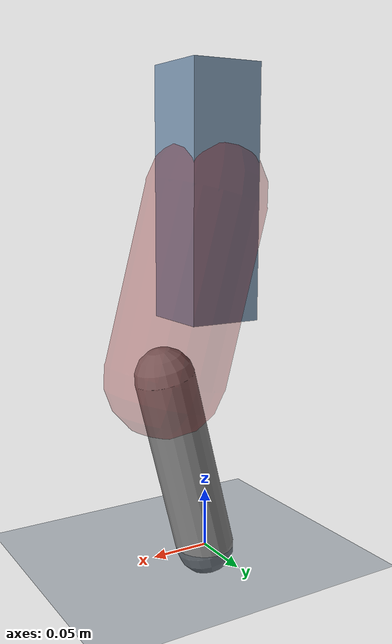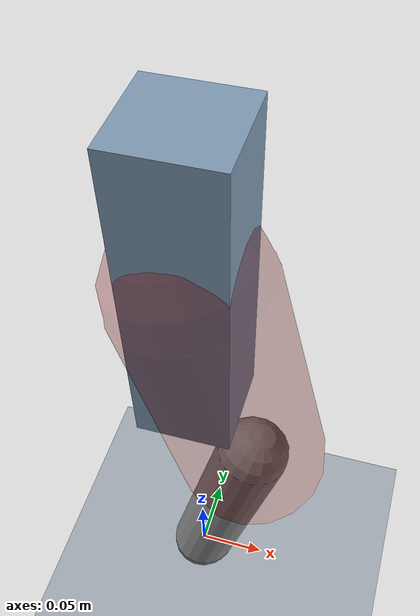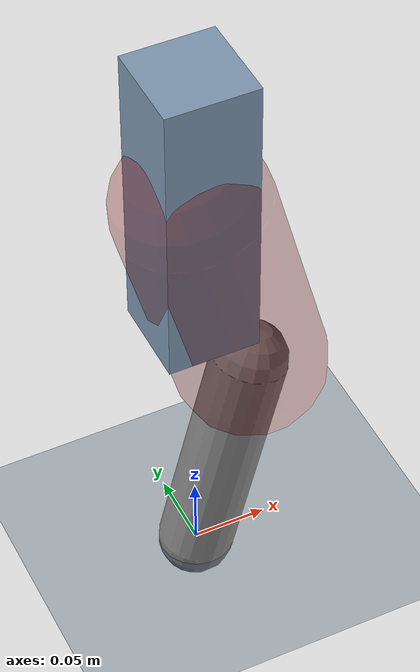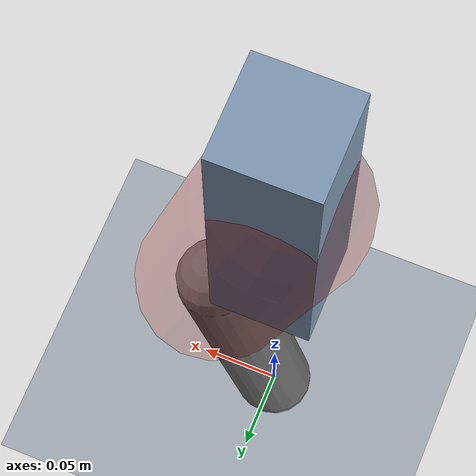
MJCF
<mujoco model="Hopper2D">
	<compiler inertiafromgeom="true" angle="radian" />
	<option timestep="0.001" integrator="implicit" cone="elliptic" solver="Newton" tolerance="1e-10" />

	<default>
		<geom contype="1" conaffinity="1" condim="3" friction="2 0.005 0.0001" solref="0.005 1" />
		<joint limited="true" damping="0.1" />
	</default>

	<asset>
		<texture name="skybox" type="skybox" builtin="gradient" rgb1=".4 .6 .8" rgb2="0 0 0" width="800" height="800" />
		<texture name="grid" type="2d" builtin="checker" rgb1=".1 .2 .3" rgb2=".2 .3 .4" width="300" height="300" mark="edge" markrgb=".2 .3 .4" />
		<material name="ground" texture="grid" texrepeat="1 1" texuniform="true" reflectance="0.1" />
		<material name="leg" rgba="0.5 0.6 0.7 1" />
	</asset>

	<worldbody>

		<geom name="floor" type="plane" size="5 5 0.25" material="ground" />

		<light directional="false" diffuse="0.8 0.8 0.8" specular="0.3 0.3 0.3" pos="0 0 2" dir="0 0 -1" />
		<light mode="targetbodycom" target="base" directional="false" diffuse="0.8 0.8 0.8" specular="0.3 0.3 0.3" pos="0 0 2" dir="0 0 -1" />

		<camera name="fixed" pos="0 -2 1" xyaxes="1 0 0 0 0 1" />
		<camera name="tracking" mode="trackcom" pos="0 -3 1" />

		<body name="root" pos="0 0 0.29917703449717936">
			<joint name="slide_x" type="slide" axis="1 0 0" range="-100 100" />
			<joint name="slide_z" type="slide" axis="0 0 1" range="0 10" />

			<body name="base" pos="0 0 0">
				<geom name="torso" type="box" size="0.03 0.03 0.1" mass="3.83" material="leg" />

				<body name="link1" pos="0 0 0" euler="0 1.3086827654351805 0">
					<joint type="hinge" axis="0 -1 0" pos="0 0 0" name="hinge1" limited="true" range="-3.14 3.14" stiffness="0" damping="0.1" />
					<geom name="thigh" type="capsule" fromto="0 0 0 0.15044452107671924 0 0" size="0.05" rgba="0.5 0 0 0.3" mass="0.6095668505841262" />

					<body name="link2" pos="0.15044452107671924 0 0" euler="0 0.5102447234280726 0">
						<joint type="hinge" axis="0 -1 0" pos="0 0 0" name="hinge2" limited="true" range="-3.14 3.14" stiffness="0" damping="0.1" />
						<geom name="shank" type="capsule" fromto="0 0 0 0.1587325134204601 0 0" size="0.025" mass="0.3654592620784141" />

					</body>
				</body>
			</body>
		</body>
	</worldbody>

	<actuator>
		<motor name="torque1" joint="hinge1" ctrlrange="-85.11673246675745 85.11673246675745" ctrllimited="true" gear="1" />
		<motor name="torque2" joint="hinge2" ctrlrange="-172.18705788814228 172.18705788814228" ctrllimited="true" gear="1" />
	</actuator>
</mujoco>
